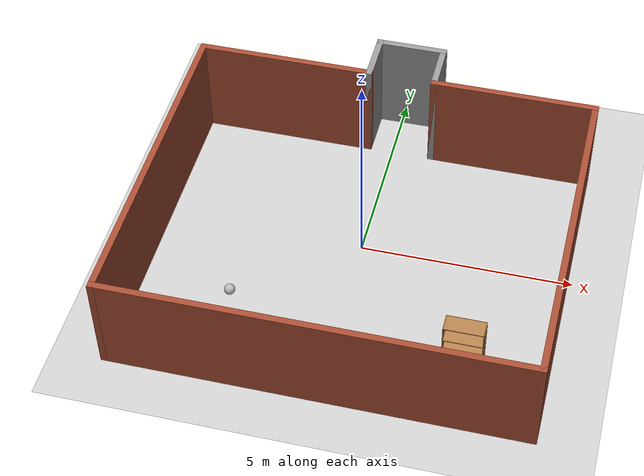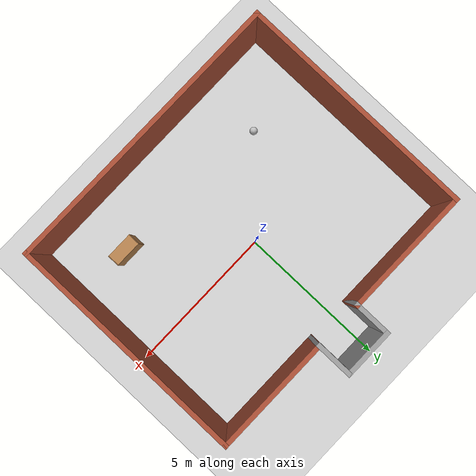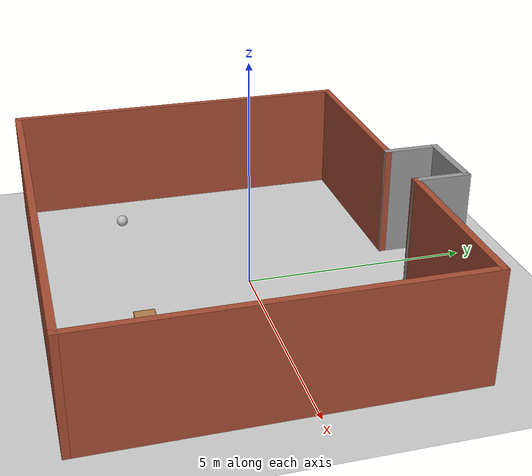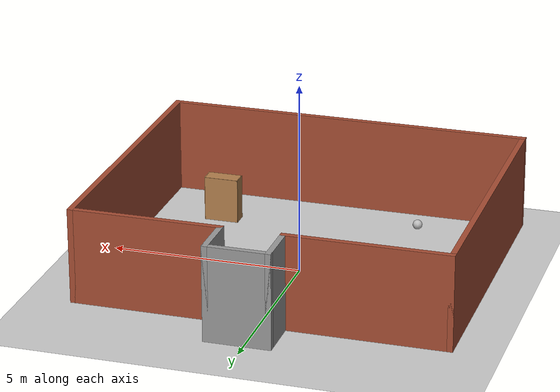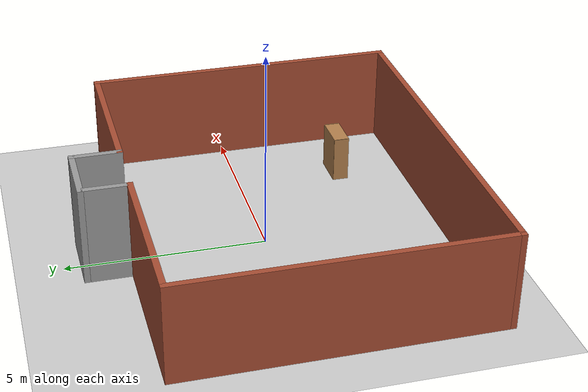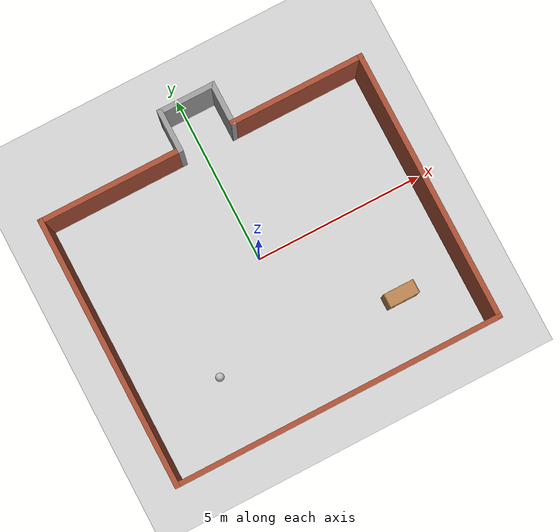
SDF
<sdf version="1.7">
 <world name="default">
  <light name="sun" type="directional">
   <pose>0 0 10 0 -0 0</pose>
   <diffuse>0.8 0.8 0.8 1</diffuse>
   <specular>0.2 0.2 0.2 1</specular>
   <attenuation>
    <range>1000</range>
    <constant>0.9</constant>
    <linear>0.01</linear>
    <quadratic>0.001</quadratic>
   </attenuation>
   <direction>-0.5 0.1 -0.9</direction>
   <spot><inner_angle>0</inner_angle><outer_angle>0</outer_angle><falloff>0</falloff></spot>
  </light>
  <model name="ground_plane">
   <static>1</static>
   <link name="link">
    <collision name="collision">
     <geometry><plane><normal>0 0 1</normal><size>100 100</size></plane></geometry>
     <surface><friction><ode><mu>100</mu><mu2>50</mu2></ode></friction></surface>
    </collision>
    <visual name="visual">
     <cast_shadows>0</cast_shadows>
     <geometry><plane><normal>0 0 1</normal><size>100 100</size></plane></geometry>
     <material>
      <script><uri>file://media/materials/scripts/gazebo.material</uri><name>Gazebo/Grey</name></script>
     </material>
    </visual>
   </link>
  </model>
  <gravity>0 0 -9.8</gravity>
  <magnetic_field>6e-06 2.3e-05 -4.2e-05</magnetic_field>
  <atmosphere type="adiabatic"/>
  <physics type="ode">
   <max_step_size>0.001</max_step_size>
   <real_time_factor>1</real_time_factor>
   <real_time_update_rate>1000</real_time_update_rate>
  </physics>
  <scene><ambient>0.4 0.4 0.4 1</ambient><background>0.7 0.7 0.7 1</background><shadows>1</shadows></scene>
  <spherical_coordinates>
   <surface_model>EARTH_WGS84</surface_model>
   <latitude_deg>0</latitude_deg>
   <longitude_deg>0</longitude_deg>
   <elevation>0</elevation>
   <heading_deg>0</heading_deg>
  </spherical_coordinates>
  <model name="cobottica">
   <pose>0.020882 0.01107 0 0 -0 0</pose>
   <link name="Wall_15">
    <collision name="Wall_15_Collision">
     <geometry><box><size>1.73 0.15 2.5</size></box></geometry>
     <pose>0 0 1.25 0 -0 0</pose>
    </collision>
    <visual name="Wall_15_Visual">
     <pose>0 0 1.25 0 -0 0</pose>
     <geometry><box><size>1.73 0.15 2.5</size></box></geometry>
     <material>
      <script><uri>file://media/materials/scripts/gazebo.material</uri><name>Gazebo/Grey</name></script>
      <ambient>1 1 1 1</ambient>
     </material>
     <meta><layer>0</layer></meta>
    </visual>
    <pose>0.15 4.5 0 0 -0 0</pose>
   </link>
   <link name="Wall_17">
    <collision name="Wall_17_Collision">
     <geometry><box><size>1.3 0.15 2.5</size></box></geometry>
     <pose>0 0 1.25 0 -0 0</pose>
    </collision>
    <visual name="Wall_17_Visual">
     <pose>0 0 1.25 0 -0 0</pose>
     <geometry><box><size>1.3 0.15 2.5</size></box></geometry>
     <material>
      <script><uri>file://media/materials/scripts/gazebo.material</uri><name>Gazebo/Grey</name></script>
      <ambient>1 1 1 1</ambient>
     </material>
     <meta><layer>0</layer></meta>
    </visual>
    <pose>0.94 3.925 0 0 -0 -1.5708</pose>
   </link>
   <link name="Wall_19">
    <collision name="Wall_19_Collision">
     <geometry><box><size>4 0.15 2.5</size></box></geometry>
     <pose>0 0 1.25 0 -0 0</pose>
    </collision>
    <visual name="Wall_19_Visual">
     <pose>0 0 1.25 0 -0 0</pose>
     <geometry><box><size>4 0.15 2.5</size></box></geometry>
     <material>
      <script><uri>file://media/materials/scripts/gazebo.material</uri><name>Gazebo/Bricks</name></script>
      <ambient>1 1 1 1</ambient>
     </material>
     <meta><layer>0</layer></meta>
    </visual>
    <pose>2.865 3.35 0 0 -0 0</pose>
   </link>
   <link name="Wall_21">
    <collision name="Wall_21_Collision">
     <geometry><box><size>8 0.15 2.5</size></box></geometry>
     <pose>0 0 1.25 0 -0 0</pose>
    </collision>
    <visual name="Wall_21_Visual">
     <pose>0 0 1.25 0 -0 0</pose>
     <geometry><box><size>8 0.15 2.5</size></box></geometry>
     <material>
      <script><uri>file://media/materials/scripts/gazebo.material</uri><name>Gazebo/Bricks</name></script>
      <ambient>1 1 1 1</ambient>
     </material>
     <meta><layer>0</layer></meta>
    </visual>
    <pose>4.79 -0.575 0 0 -0 -1.5708</pose>
   </link>
   <link name="Wall_23">
    <collision name="Wall_23_Collision">
     <geometry><box><size>9.73 0.15 2.5</size></box></geometry>
     <pose>0 0 1.25 0 -0 0</pose>
    </collision>
    <visual name="Wall_23_Visual">
     <pose>0 0 1.25 0 -0 0</pose>
     <geometry><box><size>9.73 0.15 2.5</size></box></geometry>
     <material>
      <script><uri>file://media/materials/scripts/gazebo.material</uri><name>Gazebo/Bricks</name></script>
      <ambient>1 1 1 1</ambient>
     </material>
     <meta><layer>0</layer></meta>
    </visual>
    <pose>0 -4.5 0 0 -0 3.14159</pose>
   </link>
   <link name="Wall_25">
    <collision name="Wall_25_Collision">
     <geometry><box><size>8 0.15 2.5</size></box></geometry>
     <pose>0 0 1.25 0 -0 0</pose>
    </collision>
    <visual name="Wall_25_Visual">
     <pose>0 0 1.25 0 -0 0</pose>
     <geometry><box><size>8 0.15 2.5</size></box></geometry>
     <material>
      <script><uri>file://media/materials/scripts/gazebo.material</uri><name>Gazebo/Bricks</name></script>
      <ambient>1 1 1 1</ambient>
     </material>
     <meta><layer>0</layer></meta>
    </visual>
    <pose>-4.79 -0.575 0 0 -0 1.5708</pose>
   </link>
   <link name="Wall_27">
    <collision name="Wall_27_Collision">
     <geometry><box><size>4.3 0.15 2.5</size></box></geometry>
     <pose>0 0 1.25 0 -0 0</pose>
    </collision>
    <visual name="Wall_27_Visual">
     <pose>0 0 1.25 0 -0 0</pose>
     <geometry><box><size>4.3 0.15 2.5</size></box></geometry>
     <material>
      <script><uri>file://media/materials/scripts/gazebo.material</uri><name>Gazebo/Bricks</name></script>
      <ambient>1 1 1 1</ambient>
     </material>
     <meta><layer>0</layer></meta>
    </visual>
    <pose>-2.715 3.35 0 0 -0 0</pose>
   </link>
   <link name="Wall_31">
    <collision name="Wall_31_Collision">
     <geometry><box><size>1.3 0.15 2.5</size></box></geometry>
     <pose>0 0 1.25 0 -0 0</pose>
    </collision>
    <visual name="Wall_31_Visual">
     <pose>0 0 1.25 0 -0 0</pose>
     <geometry><box><size>1.3 0.15 2.5</size></box></geometry>
     <material>
      <script><uri>file://media/materials/scripts/gazebo.material</uri><name>Gazebo/Grey</name></script>
      <ambient>1 1 1 1</ambient>
     </material>
     <meta><layer>0</layer></meta>
    </visual>
    <pose>-0.64 3.925 0 0 -0 -1.5708</pose>
   </link>
   <static>1</static>
  </model>
  <model name="bookshelf">
   <static>1</static>
   <link name="link">
    <inertial><mass>1</mass></inertial>
    <collision name="back">
     <pose>0 0.005 0.6 0 -0 0</pose>
     <geometry><box><size>0.9 0.01 1.2</size></box></geometry>
    </collision>
    <visual name="visual1">
     <pose>0 0.005 0.6 0 -0 0</pose>
     <geometry><box><size>0.9 0.01 1.2</size></box></geometry>
     <material>
      <script><uri>file://media/materials/scripts/gazebo.material</uri><name>Gazebo/Wood</name></script>
     </material>
    </visual>
    <collision name="left_side">
     <pose>0.45 -0.195 0.6 0 -0 0</pose>
     <geometry><box><size>0.02 0.4 1.2</size></box></geometry>
    </collision>
    <visual name="visual2">
     <pose>0.45 -0.195 0.6 0 -0 0</pose>
     <geometry><box><size>0.02 0.4 1.2</size></box></geometry>
     <material>
      <script><uri>file://media/materials/scripts/gazebo.material</uri><name>Gazebo/Wood</name></script>
     </material>
    </visual>
    <collision name="right_side">
     <pose>-0.45 -0.195 0.6 0 -0 0</pose>
     <geometry><box><size>0.02 0.4 1.2</size></box></geometry>
    </collision>
    <visual name="visual3">
     <pose>-0.45 -0.195 0.6 0 -0 0</pose>
     <geometry><box><size>0.02 0.4 1.2</size></box></geometry>
     <material>
      <script><uri>file://media/materials/scripts/gazebo.material</uri><name>Gazebo/Wood</name></script>
     </material>
    </visual>
    <collision name="bottom">
     <pose>0 -0.195 0.03 0 -0 0</pose>
     <geometry><box><size>0.88 0.4 0.06</size></box></geometry>
    </collision>
    <visual name="visual4">
     <pose>0 -0.195 0.03 0 -0 0</pose>
     <geometry><box><size>0.88 0.4 0.06</size></box></geometry>
     <material>
      <script><uri>file://media/materials/scripts/gazebo.material</uri><name>Gazebo/Wood</name></script>
     </material>
    </visual>
    <collision name="top">
     <pose>0 -0.195 1.19 0 -0 0</pose>
     <geometry><box><size>0.88 0.4 0.02</size></box></geometry>
    </collision>
    <visual name="visual5">
     <pose>0 -0.195 1.19 0 -0 0</pose>
     <geometry><box><size>0.88 0.4 0.02</size></box></geometry>
     <material>
      <script><uri>file://media/materials/scripts/gazebo.material</uri><name>Gazebo/Wood</name></script>
     </material>
    </visual>
    <collision name="low_shelf">
     <pose>0 -0.195 0.43 0 -0 0</pose>
     <geometry><box><size>0.88 0.4 0.02</size></box></geometry>
    </collision>
    <visual name="visual6">
     <pose>0 -0.195 0.43 0 -0 0</pose>
     <geometry><box><size>0.88 0.4 0.02</size></box></geometry>
     <material>
      <script><uri>file://media/materials/scripts/gazebo.material</uri><name>Gazebo/Wood</name></script>
     </material>
    </visual>
    <collision name="high_shelf">
     <pose>0 -0.195 0.8 0 -0 0</pose>
     <geometry><box><size>0.88 0.4 0.02</size></box></geometry>
    </collision>
    <visual name="visual7">
     <pose>0 -0.195 0.8 0 -0 0</pose>
     <geometry><box><size>0.88 0.4 0.02</size></box></geometry>
     <material>
      <script><uri>file://media/materials/scripts/gazebo.material</uri><name>Gazebo/Wood</name></script>
     </material>
    </visual>
   </link>
   <pose>2.93874 -2.51837 0 0 -0 0</pose>
  </model>
  <model name="frc2016_ball">
   <pose>-2.4809 -2.42113 0.60186 0 -0 0</pose>
   <link name="link">
    <inertial>
     <mass>0.213</mass>
     <inertia>
      <ixx>0.00322667</ixx>
      <ixy>0</ixy>
      <ixz>0</ixz>
      <iyy>0.00322667</iyy>
      <iyz>0</iyz>
      <izz>0.00322667</izz>
     </inertia>
    </inertial>
    <visual name="visual"><geometry><sphere><radius>0.127</radius></sphere></geometry></visual>
    <collision name="collision">
     <geometry><sphere><radius>0.127</radius></sphere></geometry>
     <surface>
      <bounce><restitution_coefficient>0.15937</restitution_coefficient><threshold>0</threshold></bounce>
      <contact><ode><max_vel>100</max_vel><min_depth>0.001</min_depth></ode></contact>
     </surface>
    </collision>
   </link>
  </model>
 </world>
</sdf>
